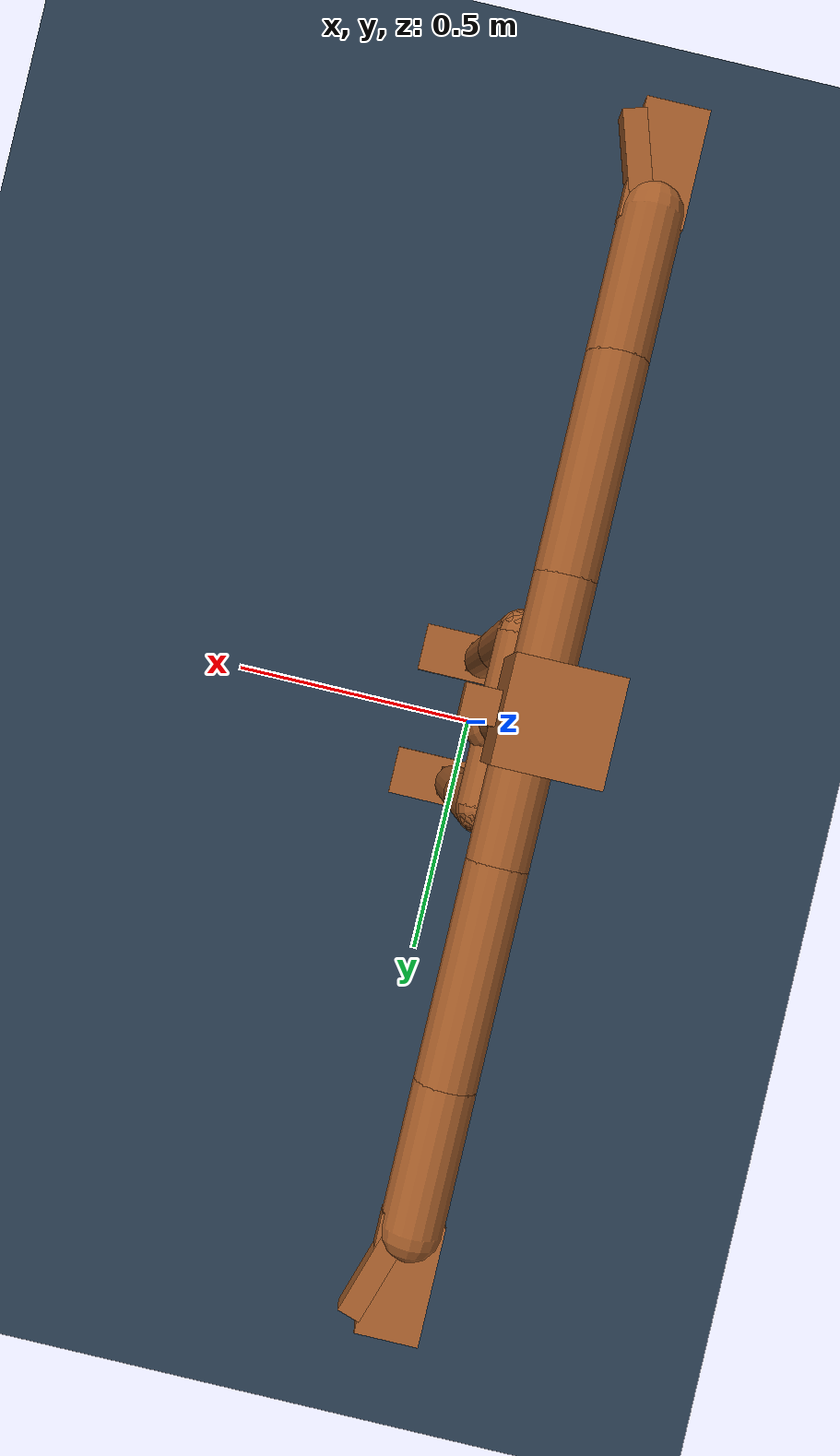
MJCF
<mujoco model="common-rig">
    <!--
            Robot Intelligence Lab
            Common Rig (Custom Humanoid) model

            @ Contact us : taemoon-jeong (motor_moon94@korea.ac.kr)
    -->
    <compiler coordinate="local" inertiafromgeom="true" angle="radian"/>

    <default>
        <joint limited="true" damping="1" armature="0"/>
        <geom contype="1" condim="3" margin="0.001" solref=".02 1" solimp=".8 .8 .01" material="matgeom"/>
        <motor ctrlrange="-.4 .4" ctrllimited="true"/>
    </default>

    <option timestep="0.005" iterations="50" tolerance="1e-10" solver="Newton" jacobian="dense" cone="pyramidal"/>

    <size nconmax="50" njmax="200" nstack="10000"/>

    <visual>
        <map force="0.1" zfar="30"/>
        <rgba haze="0.15 0.25 0.35 1"/>
        <quality shadowsize="2048"/>
        <global offwidth="800" offheight="800"/>
    </visual>

    <asset>
        <texture type="skybox" builtin="gradient" rgb1="0.3 0.5 0.7" rgb2="0 0 0" width="512" height="512"/>

        <texture name="texplane" type="2d" builtin="checker" rgb1=".2 .3 .4" rgb2=".1 0.15 0.2" width="512" height="512" mark="cross" markrgb=".8 .8 .8"/>

        <texture name="texgeom" type="cube" builtin="flat" mark="cross" width="127" height="1278"
            rgb1="0.8 0.6 0.4" rgb2="0.8 0.6 0.4" markrgb="1 1 1" random="0.01"/>

        <material name="matplane" reflectance="0.3" texture="texplane" texrepeat="1 1" texuniform="true"/>

        <material name="matgeom" texture="texgeom" texuniform="true" rgba="0.8 0.6 .4 1"/>
    </asset>

    <worldbody>
        <geom name="floor" pos="0 0 0" size="0 0 .25" type="plane" material="matplane" condim="3"/>

        <light directional="false" diffuse=".2 .2 .2" specular="0 0 0" pos="0 0 5" dir="0 0 -1" castshadow="false"/>
        <light mode="targetbodycom" target="base" directional="false" diffuse=".8 .8 .8" specular="0.3 0.3 0.3" pos="0 0 4.0" dir="0 0 -1"/>

        <body name="base" pos="0 0 0.865">
            <freejoint name="base"/>
            <geom name="base" type="sphere" pos="0 0 0" size="0.06"/>
            <body name="torso" pos="0 0 0" euler="0 0 0" >
                <geom name="root2spine" type="capsule" fromto="0 0 0 0 0 0.1990"  size="0.04" />
                <joint name="root1" type="hinge" pos="0 0 0" axis="1 0 0" range="-3.141592 3.141592" damping="60" stiffness="600" armature="0.02" />
                <joint name="root2" type="hinge" pos="0 0 0" axis="0 1 0" range="-3.141592 3.141592" damping="60" stiffness="600" armature="0.02" />
                <joint name="root3" type="hinge" pos="0 0 0" axis="0 0 1" range="-3.141592 3.141592" damping="60" stiffness="600" armature="0.02" />
                <body name="spine" pos="0 0 0.1990" euler="0 0 0">
                    <geom name="spine2neck" type="capsule" fromto="0 0 0 0 0 0.1990"  size="0.04" />
                    <joint name="spine" type="hinge" pos="0 0 0" axis="0 1 0" range="-3.141592 3.141592" damping="60" stiffness="600" armature="0.02" />
                    <body name="neck" pos="0 0 0.1990" euler="0 0 0">
                        <geom name="neck2rshoulder" type="capsule" fromto="0 0 0 0 -0.1809 0"  size="0.04" />
                        <geom name="neck2lshoulder" type="capsule" fromto="0 0 0 0 0.1809 0"  size="0.04" />
                        <body name="right_shoulder" pos="0 -0.1809 0" euler="0 0 0">
                            <geom name="rshoulder2relbow" type="capsule" fromto="0 0 0 0 -0.2768 0"  size="0.04" />
                            <joint name="rs1" type="hinge" pos="0 0 0" axis="1 0 0" range="-3.141592 3.141592" stiffness="200" damping="20" armature="0.0068" />
                            <joint name="rs2" type="hinge" pos="0 0 0" axis="0 0 1" range="-3.141592 3.141592" stiffness="200" damping="20" armature="0.0051" />
                            <joint name="rs3" type="hinge" pos="0 0 0" axis="0 1 0" range="-3.141592 3.141592" stiffness="200" damping="20" armature="0.0051" />
                            <body name="right_elbow" pos="0 -0.2768 0" euler="0 0 0">
                                <geom name="relbow2rwrist" type="capsule" fromto="0 0 0 0 -0.1815 0"  size="0.04" />
                                <joint name="re" type="hinge" pos="0 0 0" axis="0 0 1" range="0.01 2.61666666667" stiffness="150" damping="15" armature="0.0028" />
                                <body name="right_hand" pos="0 -0.1815 0" euler="0 0 0">
                                    <geom name="rthumb" type="box" pos="0.03 -0.05 0" size="0.015 0.07 0.015" euler="0 0 60"/>
                                    <geom name="rpalm" type="box" pos="0 -0.06 0" size="0.04 0.075 0.015" euler="0 0 0"/>
                                    <joint name="rw1" type="hinge" pos="0 0 0" axis="0 1 0" range="-3.141592 3.141592" damping="5" stiffness="50" armature="0.02" />
                                    <joint name="rw2" type="hinge" pos="0 0 0" axis="0 0 1" range="-3.141592 3.141592" damping="5" stiffness="50" armature="0.02" />
                                    <joint name="rw3" type="hinge" pos="0 0 0" axis="1 0 0" range="-3.141592 3.141592" damping="5" stiffness="50" armature="0.02" />
                                </body>
                            </body>
                        </body>
                        <body name="left_shoulder" pos="0 0.1809 0" euler="0 0 0">
                            <geom name="lshoulder2lelbow" type="capsule" fromto="0 0 0 0 0.2768 0"  size="0.04" />
                            <joint name="ls1" type="hinge" pos="0 0 0" axis="1 0 0" range="-3.141592 3.141592" stiffness="200" damping="20" armature="0.0068" />
                            <joint name="ls2" type="hinge" pos="0 0 0" axis="0 0 1" range="-3.141592 3.141592" stiffness="200" damping="20" armature="0.0051" />
                            <joint name="ls3" type="hinge" pos="0 0 0" axis="0 1 0" range="-3.141592 3.141592" stiffness="200" damping="20" armature="0.0051" />
                            <body name="left_elbow" pos="0 0.2768 0" euler="0 0 0">
                                <geom name="lelbow2lwrist" type="capsule" fromto="0 0 0 0 0.1815 0"  size="0.04" />
                                <joint name="le" type="hinge" pos="0 0 0" axis="0 0 1" range="-2.61666666667 -0.01" stiffness="150" damping="15" armature="0.0028" />
                                <body name="left_hand" pos="0 0.1815 0" euler="0 0 0">
                                    <geom name="lthumb" type="box" pos="0.03 0.05 0" size="0.015 0.07 0.015" euler="0 0 -60"/>
                                    <geom name="lpalm" type="box" pos="0 0.06 0" size="0.04 0.075 0.015" euler="0 0 0"/>
                                    <joint name="lw1" type="hinge" pos="0 0 0" axis="0 1 0" range="-3.141592 3.141592" damping="5" stiffness="50" armature="0.02" />
                                    <joint name="lw2" type="hinge" pos="0 0 0" axis="0 0 1" range="-3.141592 3.141592" damping="5" stiffness="50" armature="0.02" />
                                    <joint name="lw3" type="hinge" pos="0 0 0" axis="1 0 0" range="-3.141592 3.141592" damping="5" stiffness="50" armature="0.02" />
                                </body>
                            </body>
                        </body>
                        <body name="head" pos="0 0 0.2" euler="0 0 0">
                            <geom name="head" type="box" pos="0 0 0" size="0.06 0.06 0.07" />
                            <geom name="nose" type="box" pos="0.05 0 0" size="0.05 0.02 0.02" />
                            <joint name="head1" type="hinge" pos="0 0 0" axis="1 0 0" range="-3.141592 3.141592" damping="5" stiffness="50" armature="0.02" />
                            <joint name="head2" type="hinge" pos="0 0 0" axis="0 1 0" range="-3.141592 3.141592" damping="5" stiffness="50" armature="0.02" />
                            <joint name="head3" type="hinge" pos="0 0 0" axis="0 0 1" range="-3.141592 3.141592" damping="5" stiffness="50" armature="0.02" />
                        </body>
                    </body>
                </body>
            </body>
            <body name="right_leg" pos="0 0 0" euler="0 0 0">
                <geom name="base2rpelvis" type="capsule" fromto="0 0 0 0 -0.1357 0"  size="0.04" />
                <body name="right_pelvis" pos="0 -0.1357 0" euler="0 0 0">
                    <geom name="rpelvis2rknee" type="capsule" fromto="0 0 0 0 0 -0.4049"  size="0.04" />
                    <joint name="rp1" type="hinge" pos="0 0 0" axis="1 0 0" range="-3.141592 3.141592" damping="30" stiffness="300" armature="0.01" />
                    <joint name="rp2" type="hinge" pos="0 0 0" axis="0 1 0" range="-3.141592 3.141592" damping="30" stiffness="300" armature="0.01" />
                    <joint name="rp3" type="hinge" pos="0 0 0" axis="0 0 1" range="-0.52333333333 0.52333333333" damping="30" stiffness="300" armature="0.01" />
                    <body name="right_knee" pos="0 0 -0.4049" euler="0 0 0">
                        <geom name="rknee2rankle" type="capsule" fromto="0 0 0 0 0 -0.4057"  size="0.04" />
                        <joint name="rk" type="hinge" pos="0 0 0" axis="0 1 0" range="-3.141592 3.141592" damping="30" stiffness="300" armature="0.0060" />
                        <body name="right_ankle" pos="0 0 -0.4057" euler="0 0 0">
                            <geom name="rankle" type="box" pos="0 0 -0.025" size="0.03 0.03 0.025" />
                            <geom name="rfoot" type="box" pos="0.03 0 -0.05" size="0.1 0.05 0.015" />
                            <joint name="ra1" type="hinge" pos="0 0 0" axis="0 1 0" range="-3.141592 3.141592" stiffness="200" damping="20" armature="0.0008" />
                            <joint name="ra2" type="hinge" pos="0 0 0" axis="1 0 0" range="-3.141592 3.141592" stiffness="200" damping="20" armature="0.0006" />
                            <joint name="ra3" type="hinge" pos="0 0 0" axis="0 0 1" range="-0.52333333333 0.52333333333" stiffness="200" damping="20" armature="0.0006" />
                        </body>
                    </body>
                </body>
            </body>
            <body name="left_leg" pos="0 0 0" euler="0 0 0">
                <geom name="base2lpelvis" type="capsule" fromto="0 0 0 0 0.1357 0"  size="0.04" />
                <body name="left_pelvis" pos="0 0.1357 0" euler="0 0 0">
                    <geom name="lpelvis2lknee" type="capsule" fromto="0 0 0 0 0 -0.4049"  size="0.04" />
                    <joint name="lp1" type="hinge" pos="0 0 0" axis="1 0 0" range="-3.141592 3.141592" damping="30" stiffness="300" armature="0.01" />
                    <joint name="lp2" type="hinge" pos="0 0 0" axis="0 1 0" range="-3.141592 3.141592" damping="30" stiffness="300" armature="0.01" />
                    <joint name="lp3" type="hinge" pos="0 0 0" axis="0 0 1" range="-0.52333333333 0.52333333333" damping="30" stiffness="300" armature="0.01" />
                    <body name="left_knee" pos="0 0 -0.4049" euler="0 0 0">
                        <geom name="lknee2lankle" type="capsule" fromto="0 0 0 0 0 -0.4057"  size="0.04" />
                        <joint name="lk" type="hinge" pos="0 0 0" axis="0 1 0" range="-3.141592 3.141592" damping="30" stiffness="300" armature="0.0060" />
                        <body name="left_ankle" pos="0 0 -0.4057" euler="0 0 0">
                            <geom name="lankle" type="box" pos="0 0 -0.025" size="0.03 0.03 0.025" />
                            <geom name="lfoot" type="box" pos="0.03 0 -0.05" size="0.1 0.05 0.015" />
                            <joint name="la1" type="hinge" pos="0 0 0" axis="0 1 0" range="-3.141592 3.141592" stiffness="200" damping="20" armature="0.0008" />
                            <joint name="la2" type="hinge" pos="0 0 0" axis="1 0 0" range="-3.141592 3.141592" stiffness="200" damping="20" armature="0.0006" />
                            <joint name="la3" type="hinge" pos="0 0 0" axis="0 0 1" range="-0.52333333333 0.52333333333" stiffness="200" damping="20" armature="0.0006" />
                        </body>
                    </body>
                </body>
            </body>
        </body>
    </worldbody>

    <actuator>
        <motor name="root1"       gear="200" joint="root1" />
        <motor name="root2"       gear="200" joint="root2" />
        <motor name="root3"       gear="200" joint="root3" />
        <motor name="spine"       gear="200" joint="spine" />
        <motor name="rs1"       gear="100" joint="rs1" />
        <motor name="rs2"       gear="100" joint="rs2" />
        <motor name="rs3"       gear="100" joint="rs3" />
        <motor name="re"       gear="200" joint="re" />
        <motor name="rw1"       gear="100" joint="rw1" />
        <motor name="rw2"       gear="100" joint="rw2" />
        <motor name="rw3"       gear="100" joint="rw3" />
        <motor name="ls1"       gear="100" joint="ls1" />
        <motor name="ls2"       gear="100" joint="ls2" />
        <motor name="ls3"       gear="100" joint="ls3" />
        <motor name="le"       gear="200" joint="le" />
        <motor name="lw1"       gear="100" joint="lw1" />
        <motor name="lw2"       gear="100" joint="lw2" />
        <motor name="lw3"       gear="100" joint="lw3" />
        <motor name="rp1"       gear="600" joint="rp1" />
        <motor name="rp2"       gear="200" joint="rp2" />
        <motor name="rp3"       gear="200" joint="rp3" />
        <motor name="rk"       gear="400" joint="rk" />
        <motor name="ra1"       gear="100" joint="ra1" />
        <motor name="ra2"       gear="100" joint="ra2" />
        <motor name="ra3"       gear="100" joint="ra3" />
        <motor name="lp1"       gear="600" joint="lp1" />
        <motor name="lp2"       gear="200" joint="lp2" />
        <motor name="lp3"       gear="200" joint="lp3" />
        <motor name="lk"       gear="400" joint="lk" />
        <motor name="la1"       gear="100" joint="la1" />
        <motor name="la2"       gear="100" joint="la2" />
        <motor name="la3"       gear="100" joint="la3" />
        <motor name="head1"       gear="200" joint="head1" />
        <motor name="head2"       gear="200" joint="head2" />
        <motor name="head3"       gear="200" joint="head3" />
    </actuator>

    <!-- exclude -->
    <contact>
        <exclude body1="neck" body2="right_shoulder"/>
        <exclude body1="spine" body2="right_shoulder"/>
        <exclude body1="right_shoulder" body2="right_elbow"/>
        <exclude body1="right_elbow" body2="right_hand"/>

        <exclude body1="neck" body2="left_shoulder"/>
        <exclude body1="spine" body2="left_shoulder"/>
        <exclude body1="left_shoulder" body2="left_elbow"/>
        <exclude body1="left_elbow" body2="left_hand"/>

        <exclude body1="neck" body2="spine"/>
        <exclude body1="spine" body2="torso"/>
        <exclude body1="torso" body2="base"/>

        <exclude body1="torso" body2="right_pelvis"/>
        <exclude body1="right_leg" body2="base"/>
        <exclude body1="right_leg" body2="torso"/>
        <exclude body1="right_leg" body2="right_pelvis"/>
        <exclude body1="right_pelvis" body2="right_knee"/>
        <exclude body1="right_knee" body2="right_ankle"/>

        <exclude body1="right_leg" body2="left_leg"/>

        <exclude body1="torso" body2="left_pelvis"/>
        <exclude body1="left_leg" body2="base"/>
        <exclude body1="left_leg" body2="torso"/>
        <exclude body1="left_leg" body2="left_pelvis"/>
        <exclude body1="left_pelvis" body2="left_knee"/>
        <exclude body1="left_knee" body2="left_ankle"/>
    </contact>

</mujoco>
